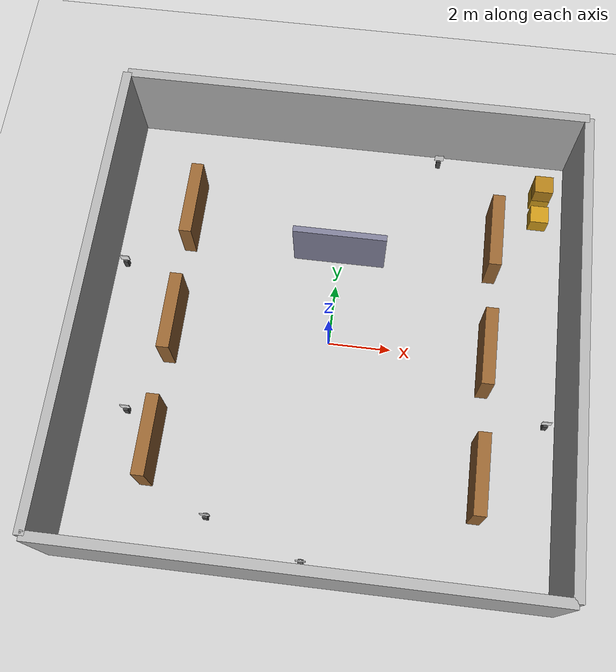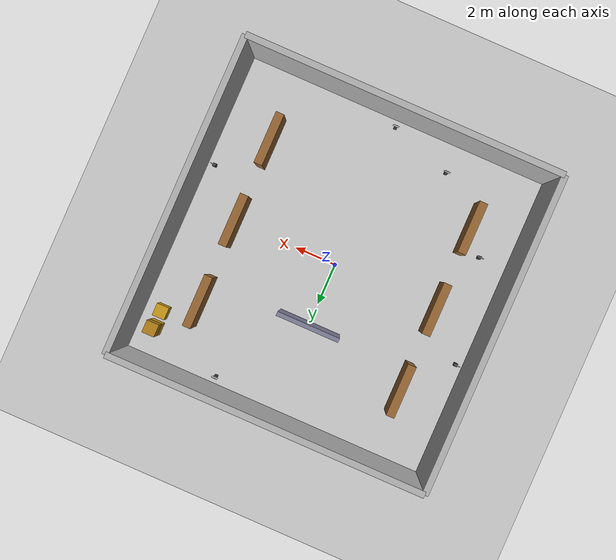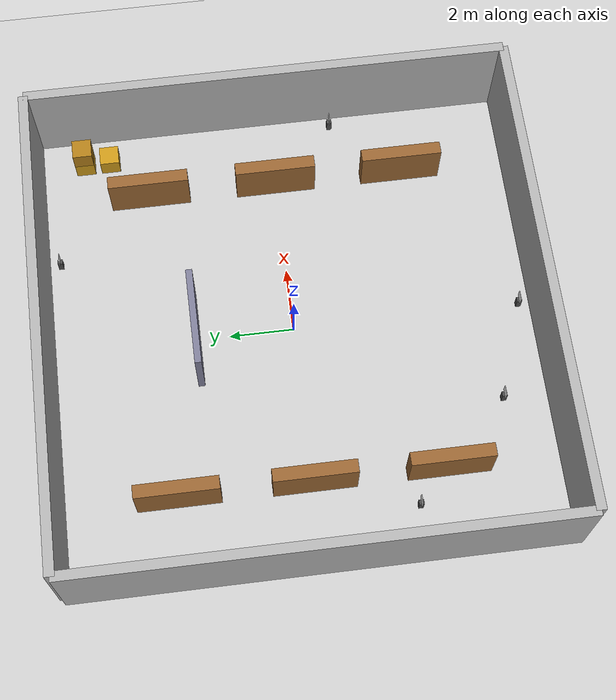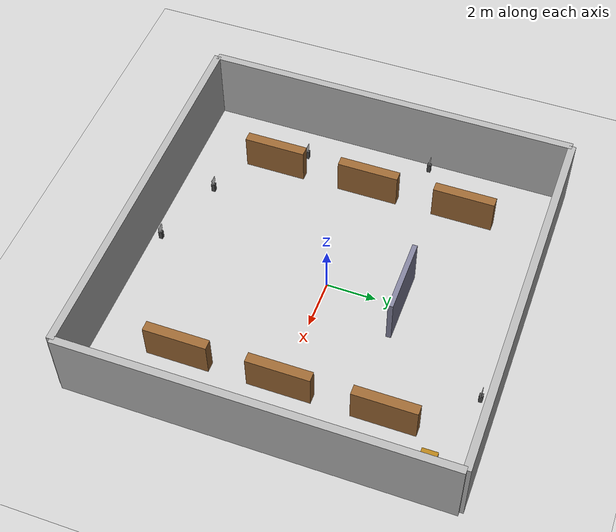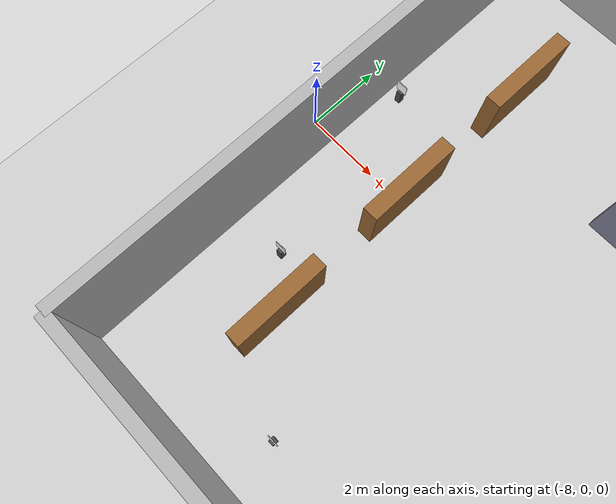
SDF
<?xml version="1.0" ?>
<sdf version="1.6">
  <world name="warehouse_world">

    <!-- ========== LIGHTING ========== -->
    <light name="sun" type="directional">
      <cast_shadows>true</cast_shadows>
      <pose>0 0 10 0 0 0</pose>
      <diffuse>0.9 0.9 0.9 1</diffuse>
      <specular>0.3 0.3 0.3 1</specular>
      <direction>-0.5 0.2 -0.9</direction>
    </light>

    <light name="ceiling_light_1" type="point">
      <pose>0 0 5 0 0 0</pose>
      <diffuse>0.8 0.8 0.8 1</diffuse>
      <specular>0.1 0.1 0.1 1</specular>
      <attenuation>
        <range>15</range>
        <constant>0.3</constant>
        <linear>0.01</linear>
        <quadratic>0.001</quadratic>
      </attenuation>
      <cast_shadows>false</cast_shadows>
    </light>

    <light name="ceiling_light_2" type="point">
      <pose>5 5 5 0 0 0</pose>
      <diffuse>0.8 0.8 0.8 1</diffuse>
      <specular>0.1 0.1 0.1 1</specular>
      <attenuation>
        <range>15</range>
        <constant>0.3</constant>
        <linear>0.01</linear>
        <quadratic>0.001</quadratic>
      </attenuation>
      <cast_shadows>false</cast_shadows>
    </light>

    <light name="ceiling_light_3" type="point">
      <pose>-5 -5 5 0 0 0</pose>
      <diffuse>0.8 0.8 0.8 1</diffuse>
      <specular>0.1 0.1 0.1 1</specular>
      <attenuation>
        <range>15</range>
        <constant>0.3</constant>
        <linear>0.01</linear>
        <quadratic>0.001</quadratic>
      </attenuation>
      <cast_shadows>false</cast_shadows>
    </light>

    <!-- ========== GROUND ========== -->
    <include>
      <uri>model://ground_plane</uri>
    </include>

    <!-- ========== OUTER WALLS ========== -->
    <!-- North Wall -->
    <model name="wall_north">
      <static>true</static>
      <pose>0 7.5 1.5 0 0 0</pose>
      <link name="link">
        <collision name="collision">
          <geometry>
            <box><size>15 0.3 3</size></box>
          </geometry>
        </collision>
        <visual name="visual">
          <geometry>
            <box><size>15 0.3 3</size></box>
          </geometry>
          <material>
            <ambient>0.7 0.7 0.7 1</ambient>
            <diffuse>0.7 0.7 0.7 1</diffuse>
          </material>
        </visual>
      </link>
    </model>

    <!-- South Wall -->
    <model name="wall_south">
      <static>true</static>
      <pose>0 -7.5 1.5 0 0 0</pose>
      <link name="link">
        <collision name="collision">
          <geometry>
            <box><size>15 0.3 3</size></box>
          </geometry>
        </collision>
        <visual name="visual">
          <geometry>
            <box><size>15 0.3 3</size></box>
          </geometry>
          <material>
            <ambient>0.7 0.7 0.7 1</ambient>
            <diffuse>0.7 0.7 0.7 1</diffuse>
          </material>
        </visual>
      </link>
    </model>

    <!-- East Wall -->
    <model name="wall_east">
      <static>true</static>
      <pose>7.5 0 1.5 0 0 0</pose>
      <link name="link">
        <collision name="collision">
          <geometry>
            <box><size>0.3 15 3</size></box>
          </geometry>
        </collision>
        <visual name="visual">
          <geometry>
            <box><size>0.3 15 3</size></box>
          </geometry>
          <material>
            <ambient>0.7 0.7 0.7 1</ambient>
            <diffuse>0.7 0.7 0.7 1</diffuse>
          </material>
        </visual>
      </link>
    </model>

    <!-- West Wall -->
    <model name="wall_west">
      <static>true</static>
      <pose>-7.5 0 1.5 0 0 0</pose>
      <link name="link">
        <collision name="collision">
          <geometry>
            <box><size>0.3 15 3</size></box>
          </geometry>
        </collision>
        <visual name="visual">
          <geometry>
            <box><size>0.3 15 3</size></box>
          </geometry>
          <material>
            <ambient>0.7 0.7 0.7 1</ambient>
            <diffuse>0.7 0.7 0.7 1</diffuse>
          </material>
        </visual>
      </link>
    </model>

    <!-- ========== SHELF ROW 1 (Left side) ========== -->
    <model name="shelf_1_1">
      <static>true</static>
      <pose>-5 4 0.75 0 0 0</pose>
      <link name="link">
        <collision name="collision">
          <geometry>
            <box><size>0.4 2.5 1.5</size></box>
          </geometry>
        </collision>
        <visual name="visual">
          <geometry>
            <box><size>0.4 2.5 1.5</size></box>
          </geometry>
          <material>
            <ambient>0.6 0.4 0.2 1</ambient>
            <diffuse>0.6 0.4 0.2 1</diffuse>
          </material>
        </visual>
      </link>
    </model>

    <model name="shelf_1_2">
      <static>true</static>
      <pose>-5 0 0.75 0 0 0</pose>
      <link name="link">
        <collision name="collision">
          <geometry>
            <box><size>0.4 2.5 1.5</size></box>
          </geometry>
        </collision>
        <visual name="visual">
          <geometry>
            <box><size>0.4 2.5 1.5</size></box>
          </geometry>
          <material>
            <ambient>0.6 0.4 0.2 1</ambient>
            <diffuse>0.6 0.4 0.2 1</diffuse>
          </material>
        </visual>
      </link>
    </model>

    <model name="shelf_1_3">
      <static>true</static>
      <pose>-5 -4 0.75 0 0 0</pose>
      <link name="link">
        <collision name="collision">
          <geometry>
            <box><size>0.4 2.5 1.5</size></box>
          </geometry>
        </collision>
        <visual name="visual">
          <geometry>
            <box><size>0.4 2.5 1.5</size></box>
          </geometry>
          <material>
            <ambient>0.6 0.4 0.2 1</ambient>
            <diffuse>0.6 0.4 0.2 1</diffuse>
          </material>
        </visual>
      </link>
    </model>

    <!-- ========== SHELF ROW 2 (Right side) ========== -->
    <model name="shelf_2_1">
      <static>true</static>
      <pose>5 4 0.75 0 0 0</pose>
      <link name="link">
        <collision name="collision">
          <geometry>
            <box><size>0.4 2.5 1.5</size></box>
          </geometry>
        </collision>
        <visual name="visual">
          <geometry>
            <box><size>0.4 2.5 1.5</size></box>
          </geometry>
          <material>
            <ambient>0.6 0.4 0.2 1</ambient>
            <diffuse>0.6 0.4 0.2 1</diffuse>
          </material>
        </visual>
      </link>
    </model>

    <model name="shelf_2_2">
      <static>true</static>
      <pose>5 0 0.75 0 0 0</pose>
      <link name="link">
        <collision name="collision">
          <geometry>
            <box><size>0.4 2.5 1.5</size></box>
          </geometry>
        </collision>
        <visual name="visual">
          <geometry>
            <box><size>0.4 2.5 1.5</size></box>
          </geometry>
          <material>
            <ambient>0.6 0.4 0.2 1</ambient>
            <diffuse>0.6 0.4 0.2 1</diffuse>
          </material>
        </visual>
      </link>
    </model>

    <model name="shelf_2_3">
      <static>true</static>
      <pose>5 -4 0.75 0 0 0</pose>
      <link name="link">
        <collision name="collision">
          <geometry>
            <box><size>0.4 2.5 1.5</size></box>
          </geometry>
        </collision>
        <visual name="visual">
          <geometry>
            <box><size>0.4 2.5 1.5</size></box>
          </geometry>
          <material>
            <ambient>0.6 0.4 0.2 1</ambient>
            <diffuse>0.6 0.4 0.2 1</diffuse>
          </material>
        </visual>
      </link>
    </model>

    <!-- ========== MIDDLE DIVIDER WALL ========== -->
    <model name="divider_wall">
      <static>true</static>
      <pose>0 3 1 0 0 0</pose>
      <link name="link">
        <collision name="collision">
          <geometry>
            <box><size>3 0.2 2</size></box>
          </geometry>
        </collision>
        <visual name="visual">
          <geometry>
            <box><size>3 0.2 2</size></box>
          </geometry>
          <material>
            <ambient>0.5 0.5 0.6 1</ambient>
            <diffuse>0.5 0.5 0.6 1</diffuse>
          </material>
        </visual>
      </link>
    </model>

    <!-- ========== LOADING AREA BOXES ========== -->
    <model name="box_1">
      <static>true</static>
      <pose>6.5 6 0.3 0 0 0</pose>
      <link name="link">
        <collision name="collision">
          <geometry>
            <box><size>0.6 0.6 0.6</size></box>
          </geometry>
        </collision>
        <visual name="visual">
          <geometry>
            <box><size>0.6 0.6 0.6</size></box>
          </geometry>
          <material>
            <ambient>0.8 0.6 0.1 1</ambient>
            <diffuse>0.8 0.6 0.1 1</diffuse>
          </material>
        </visual>
      </link>
    </model>

    <model name="box_2">
      <static>true</static>
      <pose>6.5 5.2 0.3 0 0 0</pose>
      <link name="link">
        <collision name="collision">
          <geometry>
            <box><size>0.6 0.6 0.6</size></box>
          </geometry>
        </collision>
        <visual name="visual">
          <geometry>
            <box><size>0.6 0.6 0.6</size></box>
          </geometry>
          <material>
            <ambient>0.8 0.6 0.1 1</ambient>
            <diffuse>0.8 0.6 0.1 1</diffuse>
          </material>
        </visual>
      </link>
    </model>

    <model name="box_3">
      <static>true</static>
      <pose>6.5 6 0.9 0 0 0</pose>
      <link name="link">
        <collision name="collision">
          <geometry>
            <box><size>0.6 0.6 0.6</size></box>
          </geometry>
        </collision>
        <visual name="visual">
          <geometry>
            <box><size>0.6 0.6 0.6</size></box>
          </geometry>
          <material>
            <ambient>0.7 0.5 0.1 1</ambient>
            <diffuse>0.7 0.5 0.1 1</diffuse>
          </material>
        </visual>
      </link>
    </model>

    <!-- ========== WASTE MARKER STANDS ========== -->
    <!-- These are small stands where ArUco markers will be placed -->

    <!-- Marker Stand 1 -->
    <model name="marker_stand_1">
      <static>true</static>
      <pose>-7 2 0 0 0 0</pose>
      <link name="pedestal">
        <pose>0 0 0.2 0 0 0</pose>
        <collision name="collision">
          <geometry><box><size>0.15 0.15 0.4</size></box></geometry>
        </collision>
        <visual name="visual">
          <geometry><box><size>0.15 0.15 0.4</size></box></geometry>
          <material><ambient>0.3 0.3 0.3 1</ambient><diffuse>0.3 0.3 0.3 1</diffuse></material>
        </visual>
      </link>
      <link name="marker_panel">
        <pose>0 0 0.55 0 0 0</pose>
        <collision name="collision">
          <geometry><box><size>0.3 0.02 0.3</size></box></geometry>
        </collision>
        <visual name="visual">
          <geometry><box><size>0.3 0.02 0.3</size></box></geometry>
          <material><ambient>1 1 1 1</ambient><diffuse>1 1 1 1</diffuse></material>
        </visual>
      </link>
    </model>

    <!-- Marker Stand 2 -->
    <model name="marker_stand_2">
      <static>true</static>
      <pose>7 -2 0 0 0 0</pose>
      <link name="pedestal">
        <pose>0 0 0.2 0 0 0</pose>
        <collision name="collision">
          <geometry><box><size>0.15 0.15 0.4</size></box></geometry>
        </collision>
        <visual name="visual">
          <geometry><box><size>0.15 0.15 0.4</size></box></geometry>
          <material><ambient>0.3 0.3 0.3 1</ambient><diffuse>0.3 0.3 0.3 1</diffuse></material>
        </visual>
      </link>
      <link name="marker_panel">
        <pose>0 0 0.55 0 0 0</pose>
        <collision name="collision">
          <geometry><box><size>0.3 0.02 0.3</size></box></geometry>
        </collision>
        <visual name="visual">
          <geometry><box><size>0.3 0.02 0.3</size></box></geometry>
          <material><ambient>1 1 1 1</ambient><diffuse>1 1 1 1</diffuse></material>
        </visual>
      </link>
    </model>

    <!-- Marker Stand 3 -->
    <model name="marker_stand_3">
      <static>true</static>
      <pose>0 -7 0 0 0 0</pose>
      <link name="pedestal">
        <pose>0 0 0.2 0 0 0</pose>
        <collision name="collision">
          <geometry><box><size>0.15 0.15 0.4</size></box></geometry>
        </collision>
        <visual name="visual">
          <geometry><box><size>0.15 0.15 0.4</size></box></geometry>
          <material><ambient>0.3 0.3 0.3 1</ambient><diffuse>0.3 0.3 0.3 1</diffuse></material>
        </visual>
      </link>
      <link name="marker_panel">
        <pose>0 0 0.55 0 0 0</pose>
        <collision name="collision">
          <geometry><box><size>0.3 0.02 0.3</size></box></geometry>
        </collision>
        <visual name="visual">
          <geometry><box><size>0.3 0.02 0.3</size></box></geometry>
          <material><ambient>1 1 1 1</ambient><diffuse>1 1 1 1</diffuse></material>
        </visual>
      </link>
    </model>

    <!-- Marker Stand 4 -->
    <model name="marker_stand_4">
      <static>true</static>
      <pose>3 7 0 0 0 0</pose>
      <link name="pedestal">
        <pose>0 0 0.2 0 0 0</pose>
        <collision name="collision">
          <geometry><box><size>0.15 0.15 0.4</size></box></geometry>
        </collision>
        <visual name="visual">
          <geometry><box><size>0.15 0.15 0.4</size></box></geometry>
          <material><ambient>0.3 0.3 0.3 1</ambient><diffuse>0.3 0.3 0.3 1</diffuse></material>
        </visual>
      </link>
      <link name="marker_panel">
        <pose>0 0 0.55 0 0 0</pose>
        <collision name="collision">
          <geometry><box><size>0.3 0.02 0.3</size></box></geometry>
        </collision>
        <visual name="visual">
          <geometry><box><size>0.3 0.02 0.3</size></box></geometry>
          <material><ambient>1 1 1 1</ambient><diffuse>1 1 1 1</diffuse></material>
        </visual>
      </link>
    </model>

    <!-- Marker Stand 5 -->
    <model name="marker_stand_5">
      <static>true</static>
      <pose>-3 -6 0 0 0 0</pose>
      <link name="pedestal">
        <pose>0 0 0.2 0 0 0</pose>
        <collision name="collision">
          <geometry><box><size>0.15 0.15 0.4</size></box></geometry>
        </collision>
        <visual name="visual">
          <geometry><box><size>0.15 0.15 0.4</size></box></geometry>
          <material><ambient>0.3 0.3 0.3 1</ambient><diffuse>0.3 0.3 0.3 1</diffuse></material>
        </visual>
      </link>
      <link name="marker_panel">
        <pose>0 0 0.55 0 0 0</pose>
        <collision name="collision">
          <geometry><box><size>0.3 0.02 0.3</size></box></geometry>
        </collision>
        <visual name="visual">
          <geometry><box><size>0.3 0.02 0.3</size></box></geometry>
          <material><ambient>1 1 1 1</ambient><diffuse>1 1 1 1</diffuse></material>
        </visual>
      </link>
    </model>

    <!-- Marker Stand 6 -->
    <model name="marker_stand_6">
      <static>true</static>
      <pose>-6 -3 0 0 0 0</pose>
      <link name="pedestal">
        <pose>0 0 0.2 0 0 0</pose>
        <collision name="collision">
          <geometry><box><size>0.15 0.15 0.4</size></box></geometry>
        </collision>
        <visual name="visual">
          <geometry><box><size>0.15 0.15 0.4</size></box></geometry>
          <material><ambient>0.3 0.3 0.3 1</ambient><diffuse>0.3 0.3 0.3 1</diffuse></material>
        </visual>
      </link>
      <link name="marker_panel">
        <pose>0 0 0.55 0 0 0</pose>
        <collision name="collision">
          <geometry><box><size>0.3 0.02 0.3</size></box></geometry>
        </collision>
        <visual name="visual">
          <geometry><box><size>0.3 0.02 0.3</size></box></geometry>
          <material><ambient>1 1 1 1</ambient><diffuse>1 1 1 1</diffuse></material>
        </visual>
      </link>
    </model>

    <!-- ========== PHYSICS SETTINGS ========== -->
    <physics type="ode">
      <real_time_update_rate>1000.0</real_time_update_rate>
      <max_step_size>0.001</max_step_size>
      <real_time_factor>1</real_time_factor>
    </physics>

    <!-- ========== SCENE SETTINGS ========== -->
    <scene>
      <ambient>0.4 0.4 0.4 1</ambient>
      <background>0.7 0.7 0.7 1</background>
      <shadows>true</shadows>
    </scene>

  </world>
</sdf>
